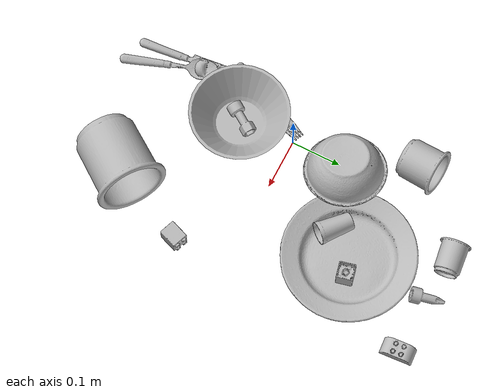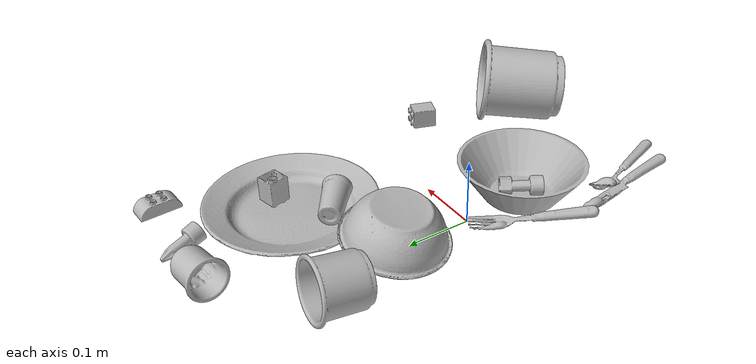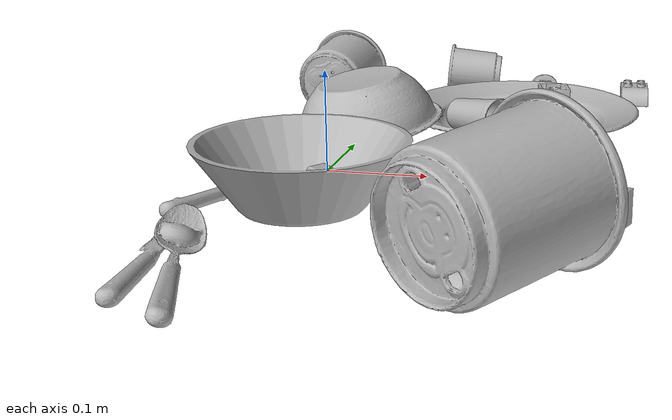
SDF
<sdf version="1.4">
  <world name="default">
    <light name="light1" type="point">
      <pose>0 0 1 0 0 0</pose>
      <diffuse>3 3 3 1</diffuse>
      <specular>3 3 3 1</specular>
    </light>
    <light name="light2" type="point">
      <pose>0 0.5 2 0 0 0</pose>
      <diffuse>1 1 1 1</diffuse>
      <specular>1 1 1 1</specular>
    </light>
    <light name="light3" type="point">
      <pose>0 0.5 2 0 0 0</pose>
      <diffuse>3 3 3 1</diffuse>
      <specular>3 3 3 1</specular>
    </light>
    <scene>
      <ambient>0.7 0.7 0.7</ambient>
    </scene>
    <model name="plate1">
      <link name="link_plate1">
        <collision name="default">
          <geometry>
            <mesh>
              <uri>model://plate/collision_meshes/collision.obj</uri>
              <scale>1.0 1.0 1.0</scale>
            </mesh>
          </geometry>
          <surface>
            <friction>
              <ode>
                <mu>0.5</mu>
                <mu2>0.5</mu2>
              </ode>
            </friction>
          <contact>
        <ode>
            <max_vel>0</max_vel>
            <min_depth>0.0001</min_depth>
            <kp>1e8</kp>
        </ode>
    </contact></surface>
        </collision>
        <visual name="default">
          <geometry>
            <mesh>
              <uri>model://plate/visual_meshes/visual.dae</uri>
              <scale>1.0 1.0 1.0</scale>
            </mesh>
          </geometry>
        </visual>
        <inertial>
          <mass>0.188415065407753</mass>
          <pose>-0.0006044681649655104 0.0002782578521873802 -0.0010561991948634386 0.0022187970116661695 -0.0032254679619122127 0.4526056514331616</pose>
          <inertia>
            <ixx>0.00088140933</ixx>
            <iyy>0.000872979</iyy>
            <izz>0.0017239053</izz>
            <ixy>0</ixy>
            <ixz>0</ixz>
            <iyz>0</iyz>
          </inertia>
        </inertial>
      </link>
      <pose>0.1618296056985855 0.20044685900211334 0.013733001425862312 2.2423458552022157e-08 2.732594929570252e-08 1.6120238870082473</pose>
    </model>
    <model name="cup1">
      <link name="link_cup1">
        <collision name="default">
          <geometry>
            <mesh>
              <uri>model://d_cups/collision_meshes/collision.obj</uri>
              <scale>2.0 2.0 2.0</scale>
            </mesh>
          </geometry>
          <surface>
            <friction>
              <ode>
                <mu>0.5</mu>
                <mu2>0.5</mu2>
              </ode>
            </friction>
          <contact>
        <ode>
            <max_vel>0</max_vel>
            <min_depth>0.0001</min_depth>
            <kp>1e8</kp>
        </ode>
    </contact></surface>
        </collision>
        <visual name="default">
          <geometry>
            <mesh>
              <uri>model://d_cups/visual_meshes/visual.dae</uri>
              <scale>2.0 2.0 2.0</scale>
            </mesh>
          </geometry>
        </visual>
        <inertial>
          <mass>0.39843064546585083</mass>
          <pose>0.0016136104241013527 0.0038234808016568422 -0.004533304367214441 0.24012134810188138 -0.24709791903716813 0.5942561701250738</pose>
          <inertia>
            <ixx>0.0013343208</ixx>
            <iyy>0.001330459</iyy>
            <izz>0.001207787</izz>
            <ixy>0</ixy>
            <ixz>0</ixz>
            <iyz>0</iyz>
          </inertia>
        </inertial>
      </link>
      <pose>0.20455700159072876 -0.26909470558166504 0.06492500007152557 -1.472458536643238 0.4619690003192813 -0.5724443669675129</pose>
    </model>
    <model name="silverware1">
      <link name="link_silverware1">
        <collision name="default">
          <geometry>
            <mesh>
              <uri>model://knife/collision_meshes/collision.obj</uri>
              <scale>1.0 1.0 1.0</scale>
            </mesh>
          </geometry>
          <surface>
            <friction>
              <ode>
                <mu>0.5</mu>
                <mu2>0.5</mu2>
              </ode>
            </friction>
          <contact>
        <ode>
            <max_vel>0</max_vel>
            <min_depth>0.0001</min_depth>
            <kp>1e8</kp>
        </ode>
    </contact></surface>
        </collision>
        <visual name="default">
          <geometry>
            <mesh>
              <uri>model://knife/visual_meshes/visual.dae</uri>
              <scale>1.0 1.0 1.0</scale>
            </mesh>
          </geometry>
        </visual>
        <inertial>
          <mass>0.027211036533117294</mass>
          <pose>-0.02378525771200657 0.0015275125624611974 5.062023410573602e-05 0.0730549860308878 0.01724841828598218 -0.007409817457274567</pose>
          <inertia>
            <ixx>7.723595e-07</ixx>
            <iyy>0.000104540384</iyy>
            <izz>0.00010478913</izz>
            <ixy>0</ixy>
            <ixz>0</ixz>
            <iyz>0</iyz>
          </inertia>
        </inertial>
      </link>
      <pose>-0.06459422409534454 -0.25545164942741394 0.006024789530783892 3.112403958325858 0.04286592080220508 1.7053750739567055</pose>
    </model>
    <model name="silverware2">
      <link name="link_silverware2">
        <collision name="default">
          <geometry>
            <mesh>
              <uri>model://fork/collision_meshes/collision.obj</uri>
              <scale>1.0 1.0 1.0</scale>
            </mesh>
          </geometry>
          <surface>
            <friction>
              <ode>
                <mu>0.5</mu>
                <mu2>0.5</mu2>
              </ode>
            </friction>
          <contact>
        <ode>
            <max_vel>0</max_vel>
            <min_depth>0.0001</min_depth>
            <kp>1e8</kp>
        </ode>
    </contact></surface>
        </collision>
        <visual name="default">
          <geometry>
            <mesh>
              <uri>model://fork/visual_meshes/visual.dae</uri>
              <scale>1.0 1.0 1.0</scale>
            </mesh>
          </geometry>
        </visual>
        <inertial>
          <mass>0.01567319966852665</mass>
          <pose>-0.029570044949650764 0.00046588233090005815 0.0003218860656488687 -0.013551693849150472 -0.010977837004960822 0.014453899894816049</pose>
          <inertia>
            <ixx>5.494343e-07</ixx>
            <iyy>4.0918225e-05</iyy>
            <izz>4.1163967e-05</izz>
            <ixy>0</ixy>
            <ixz>0</ixz>
            <iyz>0</iyz>
          </inertia>
        </inertial>
      </link>
      <pose>-0.05273411422967911 -0.0808691456913948 0.0056968918070197105 -0.17776489145226398 0.025392877351562013 1.1227271266818524</pose>
    </model>
    <model name="silverware3">
      <link name="link_silverware3">
        <collision name="default">
          <geometry>
            <mesh>
              <uri>model://spoon/collision_meshes/collision.obj</uri>
              <scale>1.0 1.0 1.0</scale>
            </mesh>
          </geometry>
          <surface>
            <friction>
              <ode>
                <mu>0.5</mu>
                <mu2>0.5</mu2>
              </ode>
            </friction>
          <contact>
        <ode>
            <max_vel>0</max_vel>
            <min_depth>0.0001</min_depth>
            <kp>1e8</kp>
        </ode>
    </contact></surface>
        </collision>
        <visual name="default">
          <geometry>
            <mesh>
              <uri>model://spoon/visual_meshes/visual.dae</uri>
              <scale>1.0 1.0 1.0</scale>
            </mesh>
          </geometry>
        </visual>
        <inertial>
          <mass>0.020675545558333397</mass>
          <pose>-0.0055263228714466095 -0.001603417913429439 -0.0007271659560501575 0.03521671071703309 -0.03906584129558259 0.006150610048623938</pose>
          <inertia>
            <ixx>1.1500075e-06</ixx>
            <iyy>7.866978e-05</iyy>
            <izz>7.923691e-05</izz>
            <ixy>0</ixy>
            <ixz>0</ixz>
            <iyz>0</iyz>
          </inertia>
        </inertial>
      </link>
      <pose>-0.034042637795209885 -0.2869272530078888 0.010248027741909027 0.3152406711907219 0.0011027913705812633 1.8980444075631921</pose>
    </model>
    <model name="cup3">
      <link name="link_cup3">
        <collision name="default">
          <geometry>
            <mesh>
              <uri>model://h_cups/collision_meshes/collision.obj</uri>
              <scale>1.0 1.0 1.0</scale>
            </mesh>
          </geometry>
          <surface>
            <friction>
              <ode>
                <mu>0.5</mu>
                <mu2>0.5</mu2>
              </ode>
            </friction>
          <contact>
        <ode>
            <max_vel>0</max_vel>
            <min_depth>0.0001</min_depth>
            <kp>1e8</kp>
        </ode>
    </contact></surface>
        </collision>
        <visual name="default">
          <geometry>
            <mesh>
              <uri>model://h_cups/visual_meshes/visual.dae</uri>
              <scale>1.0 1.0 1.0</scale>
            </mesh>
          </geometry>
        </visual>
        <inertial>
          <mass>0.08491484075784683</mass>
          <pose>-2.702520214370452e-05 0.00023018663341645151 -0.0018405397422611713 -0.02436220805872295 0.06545280106490914 0.1288526015338695</pose>
          <inertia>
            <ixx>0.000109663546</ixx>
            <iyy>0.00010835491</iyy>
            <izz>0.00011500697</izz>
            <ixy>0</ixy>
            <ixz>0</ixz>
            <iyz>0</iyz>
          </inertia>
        </inertial>
      </link>
      <pose>-0.057991284877061844 0.24514903128147125 0.042199548333883286 -1.3334182955408984 1.1014434725836775 0.12165337891936888</pose>
    </model>
    <model name="cup4">
      <link name="link_cup4">
        <collision name="default">
          <geometry>
            <mesh>
              <uri>model://cup_small/collision_meshes/collision.obj</uri>
              <scale>1.0 1.0 1.0</scale>
            </mesh>
          </geometry>
          <surface>
            <friction>
              <ode>
                <mu>0.5</mu>
                <mu2>0.5</mu2>
              </ode>
            </friction>
          <contact>
        <ode>
            <max_vel>0</max_vel>
            <min_depth>0.0001</min_depth>
            <kp>1e8</kp>
        </ode>
    </contact></surface>
        </collision>
        <visual name="default">
          <geometry>
            <mesh>
              <uri>model://cup_small/visual_meshes/visual.dae</uri>
              <scale>1.0 1.0 1.0</scale>
            </mesh>
          </geometry>
        </visual>
        <inertial>
          <mass>0.024220753461122513</mass>
          <pose>0.00010482438665349036 -0.00033778438228182495 -0.010742821730673313 -0.011493274197159384 -0.01528013747447056 -0.5058088438882253</pose>
          <inertia>
            <ixx>1.4260815e-05</ixx>
            <iyy>1.433438e-05</iyy>
            <izz>6.4388e-06</izz>
            <ixy>0</ixy>
            <ixz>0</ixz>
            <iyz>0</iyz>
          </inertia>
        </inertial>
      </link>
      <pose>0.12439511716365814 0.1511664092540741 0.02395954728126526 1.491649213836603 0.21396012297277842 0.8770007887163717</pose>
    </model>
    <model name="cup5">
      <link name="link_cup5">
        <collision name="default">
          <geometry>
            <mesh>
              <uri>model://b_cups/collision_meshes/collision.obj</uri>
              <scale>1.0 1.0 1.0</scale>
            </mesh>
          </geometry>
          <surface>
            <friction>
              <ode>
                <mu>0.5</mu>
                <mu2>0.5</mu2>
              </ode>
            </friction>
          <contact>
        <ode>
            <max_vel>0</max_vel>
            <min_depth>0.0001</min_depth>
            <kp>1e8</kp>
        </ode>
    </contact></surface>
        </collision>
        <visual name="default">
          <geometry>
            <mesh>
              <uri>model://b_cups/visual_meshes/visual.dae</uri>
              <scale>1.0 1.0 1.0</scale>
            </mesh>
          </geometry>
        </visual>
        <inertial>
          <mass>0.049698356539011</mass>
          <pose>0.0005182003951631486 0.0018058595014736056 -0.0013381819007918239 0.1135633586286738 0.03872473724046268 -0.3456911343663658</pose>
          <inertia>
            <ixx>3.2531058e-05</ixx>
            <iyy>3.1913434e-05</iyy>
            <izz>2.7374275e-05</izz>
            <ixy>0</ixy>
            <ixz>0</ixz>
            <iyz>0</iyz>
          </inertia>
        </inertial>
      </link>
      <pose>0.08177292346954346 0.3732982575893402 0.02763063833117485 -1.4758388238390028 -0.14059692013393735 1.68279264775921</pose>
    </model>
    <model name="bowl1">
      <link name="link_bowl1">
        <collision name="default">
          <geometry>
            <mesh>
              <uri>model://bowl/collision_meshes/collision.obj</uri>
              <scale>1.0 1.0 1.0</scale>
            </mesh>
          </geometry>
          <surface>
            <friction>
              <ode>
                <mu>0.5</mu>
                <mu2>0.5</mu2>
              </ode>
            </friction>
          <contact>
        <ode>
            <max_vel>0</max_vel>
            <min_depth>0.0001</min_depth>
            <kp>1e8</kp>
        </ode>
    </contact></surface>
        </collision>
        <visual name="default">
          <geometry>
            <mesh>
              <uri>model://bowl/visual_meshes/visual.dae</uri>
              <scale>1.0 1.0 1.0</scale>
            </mesh>
          </geometry>
        </visual>
        <inertial>
          <mass>0.10713337361812592</mass>
          <pose>0.00020444899564608932 -0.001030207029543817 -0.0008042642148211598 -0.015763984617069283 0.014546905390658569 0.7140476331316008</pose>
          <inertia>
            <ixx>0.0002460938</ixx>
            <iyy>0.00024059511</iyy>
            <izz>0.00041401442</izz>
            <ixy>0</ixy>
            <ixz>0</ixz>
            <iyz>0</iyz>
          </inertia>
        </inertial>
      </link>
      <pose>0.00589755130931735 0.11483694612979889 0.0416666641831398 -3.1135197717541163 -0.1920672313309455 0.38468288465529077</pose>
    </model>
    <model name="bowl2">
      <link name="link_bowl2">
        <collision name="default">
          <geometry>
            <mesh>
              <uri>model://bowl_a/collision_meshes/collision.obj</uri>
              <scale>1.0 1.0 1.0</scale>
            </mesh>
          </geometry>
          <surface>
            <friction>
              <ode>
                <mu>0.5</mu>
                <mu2>0.5</mu2>
              </ode>
            </friction>
          <contact>
        <ode>
            <max_vel>0</max_vel>
            <min_depth>0.0001</min_depth>
            <kp>1e8</kp>
        </ode>
    </contact></surface>
        </collision>
        <visual name="default">
          <geometry>
            <mesh>
              <uri>model://bowl_a/visual_meshes/visual.dae</uri>
              <scale>1.0 1.0 1.0</scale>
            </mesh>
          </geometry>
        </visual>
        <inertial>
          <mass>0.5226007103919983</mass>
          <pose>0.00027867400785908103 4.731409717351198e-05 -0.0013765293406322598 -0.0009805372975616423 -0.0010938241101444716 -0.19123543414166835</pose>
          <inertia>
            <ixx>0.0014878683</ixx>
            <iyy>0.0014970028</iyy>
            <izz>0.0026462309</izz>
            <ixy>0</ixy>
            <ixz>0</ixz>
            <iyz>0</iyz>
          </inertia>
        </inertial>
      </link>
      <pose>0.011000704020261765 -0.10960783064365387 0.030383428558707237 -2.4424490829052456e-05 -6.664829458563513e-06 2.2908848072199497</pose>
    </model>
    <model name="toy1">
      <link name="link_toy1">
        <collision name="default">
          <geometry>
            <mesh>
              <uri>model://f_lego_duplo/collision_meshes/collision.obj</uri>
              <scale>1.0 1.0 1.0</scale>
            </mesh>
          </geometry>
          <surface>
            <friction>
              <ode>
                <mu>0.5</mu>
                <mu2>0.5</mu2>
              </ode>
            </friction>
          <contact>
        <ode>
            <max_vel>0</max_vel>
            <min_depth>0.0001</min_depth>
            <kp>1e8</kp>
        </ode>
    </contact></surface>
        </collision>
        <visual name="default">
          <geometry>
            <mesh>
              <uri>model://f_lego_duplo/visual_meshes/visual.dae</uri>
              <scale>1.0 1.0 1.0</scale>
            </mesh>
          </geometry>
        </visual>
        <inertial>
          <mass>0.04674473777413368</mass>
          <pose>2.3694283299846575e-05 0.00013393160770647228 0.0018837876850739121 0.029838743240884653 -0.014424615896258132 -0.6756775311218791</pose>
          <inertia>
            <ixx>9.877422e-06</ixx>
            <iyy>9.965418e-06</iyy>
            <izz>8.57402e-06</izz>
            <ixy>0</ixy>
            <ixz>0</ixz>
            <iyz>0</iyz>
          </inertia>
        </inertial>
      </link>
      <pose>0.19828800857067108 0.21158523857593536 0.025812171399593353 3.1296016272248837 0.002244772188094561 -1.3447119306332804</pose>
    </model>
    <model name="toy2">
      <link name="link_toy2">
        <collision name="default">
          <geometry>
            <mesh>
              <uri>model://b_lego_duplo/collision_meshes/collision.obj</uri>
              <scale>1.0 1.0 1.0</scale>
            </mesh>
          </geometry>
          <surface>
            <friction>
              <ode>
                <mu>0.5</mu>
                <mu2>0.5</mu2>
              </ode>
            </friction>
          <contact>
        <ode>
            <max_vel>0</max_vel>
            <min_depth>0.0001</min_depth>
            <kp>1e8</kp>
        </ode>
    </contact></surface>
        </collision>
        <visual name="default">
          <geometry>
            <mesh>
              <uri>model://b_lego_duplo/visual_meshes/visual.dae</uri>
              <scale>1.0 1.0 1.0</scale>
            </mesh>
          </geometry>
        </visual>
        <inertial>
          <mass>0.046308279037475586</mass>
          <pose>-0.00011053026537410915 -9.152292477665469e-06 0.001929429010488093 -0.03749474318211287 -0.02635425030857695 0.451892682452606</pose>
          <inertia>
            <ixx>9.477338e-06</ixx>
            <iyy>9.541048e-06</iyy>
            <izz>8.443999e-06</izz>
            <ixy>0</ixy>
            <ixz>0</ixz>
            <iyz>0</iyz>
          </inertia>
        </inertial>
      </link>
      <pose>0.27797481417655945 -0.10926726460456848 0.01621655561029911 -1.5802372840355274 0.00032196506630014583 -0.35463049442505123</pose>
    </model>
    <model name="toy3">
      <link name="link_toy3">
        <collision name="default">
          <geometry>
            <mesh>
              <uri>model://c_toy_airplane/collision_meshes/collision.obj</uri>
              <scale>1.0 1.0 1.0</scale>
            </mesh>
          </geometry>
          <surface>
            <friction>
              <ode>
                <mu>0.5</mu>
                <mu2>0.5</mu2>
              </ode>
            </friction>
          <contact>
        <ode>
            <max_vel>0</max_vel>
            <min_depth>0.0001</min_depth>
            <kp>1e8</kp>
        </ode>
    </contact></surface>
        </collision>
        <visual name="default">
          <geometry>
            <mesh>
              <uri>model://c_toy_airplane/visual_meshes/visual.dae</uri>
              <scale>1.0 1.0 1.0</scale>
            </mesh>
          </geometry>
        </visual>
        <inertial>
          <mass>0.03609102964401245</mass>
          <pose>-0.00023024271649774164 -4.429565194641327e-07 -0.006080531980842352 -0.006192551548155338 -0.01679780015794874 0.7654806130326979</pose>
          <inertia>
            <ixx>1.6572261e-05</ixx>
            <iyy>1.6525488e-05</iyy>
            <izz>3.890839e-06</izz>
            <ixy>0</ixy>
            <ixz>0</ixz>
            <iyz>0</iyz>
          </inertia>
        </inertial>
      </link>
      <pose>0.0073663536459207535 -0.10728156566619873 0.018466975539922714 -1.602170090260616 0.4140218872562173 -0.6070237703902132</pose>
    </model>
    <model name="toy4">
      <link name="link_toy4">
        <collision name="default">
          <geometry>
            <mesh>
              <uri>model://d_toy_airplane/collision_meshes/collision.obj</uri>
              <scale>1.0 1.0 1.0</scale>
            </mesh>
          </geometry>
          <surface>
            <friction>
              <ode>
                <mu>0.5</mu>
                <mu2>0.5</mu2>
              </ode>
            </friction>
          <contact>
        <ode>
            <max_vel>0</max_vel>
            <min_depth>0.0001</min_depth>
            <kp>1e8</kp>
        </ode>
    </contact></surface>
        </collision>
        <visual name="default">
          <geometry>
            <mesh>
              <uri>model://d_toy_airplane/visual_meshes/visual.dae</uri>
              <scale>1.0 1.0 1.0</scale>
            </mesh>
          </geometry>
        </visual>
        <inertial>
          <mass>0.017463792115449905</mass>
          <pose>9.410289203515276e-05 -5.80932101001963e-05 -0.011728095822036266 0.00026611357398368453 0.004679028940218743 0.5192826772494831</pose>
          <inertia>
            <ixx>5.2353053e-06</ixx>
            <iyy>5.239254e-06</iyy>
            <izz>1.5805728e-06</izz>
            <ixy>0</ixy>
            <ixz>0</ixz>
            <iyz>0</iyz>
          </inertia>
        </inertial>
      </link>
      <pose>0.16621533036231995 0.36776989698410034 0.011234624311327934 1.794412744773519 -0.197051107589426 -2.9078201261437955</pose>
    </model>
    <model name="toy5">
      <link name="link_toy5">
        <collision name="default">
          <geometry>
            <mesh>
              <uri>model://a_lego_duplo/collision_meshes/collision.obj</uri>
              <scale>1.0 1.0 1.0</scale>
            </mesh>
          </geometry>
          <surface>
            <friction>
              <ode>
                <mu>0.5</mu>
                <mu2>0.5</mu2>
              </ode>
            </friction>
          <contact>
        <ode>
            <max_vel>0</max_vel>
            <min_depth>0.0001</min_depth>
            <kp>1e8</kp>
        </ode>
    </contact></surface>
        </collision>
        <visual name="default">
          <geometry>
            <mesh>
              <uri>model://a_lego_duplo/visual_meshes/visual.dae</uri>
              <scale>1.0 1.0 1.0</scale>
            </mesh>
          </geometry>
        </visual>
        <inertial>
          <mass>0.016317613422870636</mass>
          <pose>-0.00011337783507769927 0.00018517576972953975 0.00036926058237440884 -0.01411698761390393 -0.0001256633936569927 6.142942133676727e-05</pose>
          <inertia>
            <ixx>2.0920475e-06</ixx>
            <iyy>4.6866458e-06</iyy>
            <izz>5.8054516e-06</izz>
            <ixy>0</ixy>
            <ixz>0</ixz>
            <iyz>0</iyz>
          </inertia>
        </inertial>
      </link>
      <pose>0.28149062395095825 0.36238038539886475 0.012111997231841087 -4.7297682952185466e-08 -1.773019704795188e-08 1.6506312357278832</pose>
    </model>
  <physics type="ode">
      <max_contacts>50</max_contacts>
      <ode>
        <solver>
          <type>quick</type>
          <iters>75</iters>
        </solver>
        <constraints>
          <contact_max_correcting_vel>0</contact_max_correcting_vel>
          <contact_surface_layer>0</contact_surface_layer>
        </constraints>
      </ode>
    </physics></world>
</sdf>
